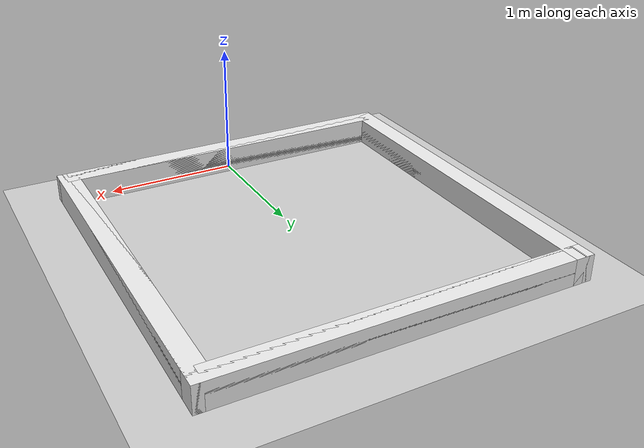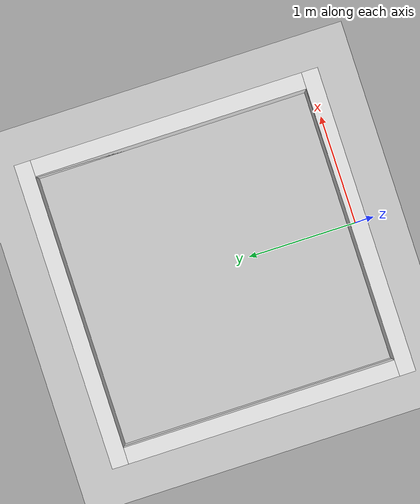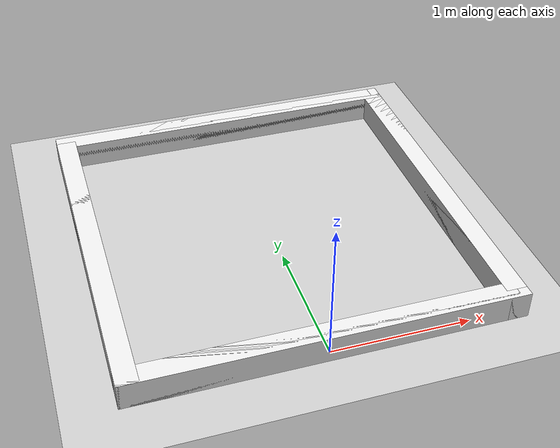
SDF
<sdf version="1.6">
 <world name="default">
  <model name="ground_plane">
   <static>1</static>
   <link name="link">
    <collision name="collision">
     <geometry><plane><normal>0 0 1</normal><size>100 100</size></plane></geometry>
     <surface><friction><ode><mu>100</mu><mu2>50</mu2></ode></friction></surface>
    </collision>
    <visual name="visual">
     <cast_shadows>0</cast_shadows>
     <geometry><plane><normal>0 0 1</normal><size>100 100</size></plane></geometry>
     <material>
      <script><uri>file://media/materials/scripts/gazebo.material</uri><name>Gazebo/Grey</name></script>
     </material>
    </visual>
   </link>
  </model>
  <model name="frame">
   <link name="link_3_clone">
    <pose>0 -1.325 0 0 -0 0</pose>
    <inertial>
     <mass>57</mass>
     <inertia><ixx>0.0</ixx><ixy>0</ixy><ixz>0</ixz><iyy>0.0</iyy><iyz>0</iyz><izz>0.0</izz></inertia>
    </inertial>
    <visual name="visual">
     <geometry><box><size>2.8 0.15 0.2</size></box></geometry>
     <material>
      <lighting>1</lighting>
      <script><uri>file://media/materials/scripts/gazebo.material</uri><name>Gazebo/White</name></script>
     </material>
    </visual>
    <visual name="ModelPreview_2::link_3_clone::visual_1">
     <geometry><box><size>2.65 0.15 0.2</size></box></geometry>
     <material>
      <lighting>1</lighting>
      <script><uri>file://media/materials/scripts/gazebo.material</uri><name>Gazebo/White</name></script>
     </material>
    </visual>
    <collision name="collision">
     <geometry><box><size>2.8 0.15 0.2</size></box></geometry>
     <surface>
      <friction>
       <ode><mu>1</mu><mu2>1</mu2><fdir1>0 0 0</fdir1><slip1>0</slip1><slip2>0</slip2></ode>
       <torsional>
        <coefficient>1</coefficient>
        <patch_radius>0</patch_radius>
        <surface_radius>0</surface_radius>
        <use_patch_radius>1</use_patch_radius>
        <ode><slip>0</slip></ode>
       </torsional>
      </friction>
      <bounce><restitution_coefficient>0</restitution_coefficient><threshold>1e+06</threshold></bounce>
      <contact>
       <collide_without_contact>0</collide_without_contact>
       <collide_without_contact_bitmask>1</collide_without_contact_bitmask>
       <collide_bitmask>1</collide_bitmask>
       <ode>
        <soft_cfm>0</soft_cfm>
        <soft_erp>0.2</soft_erp>
        <kp>1e+13</kp>
        <kd>1</kd>
        <max_vel>0.01</max_vel>
        <min_depth>0</min_depth>
       </ode>
       <bullet>
        <split_impulse>1</split_impulse>
        <split_impulse_penetration_threshold>-0.01</split_impulse_penetration_threshold>
        <soft_cfm>0</soft_cfm>
        <soft_erp>0.2</soft_erp>
        <kp>1e+13</kp>
        <kd>1</kd>
       </bullet>
      </contact>
     </surface>
    </collision>
   </link>
   <link name="link_3_clone_clone">
    <pose>0 1.325 0 0 -0 0</pose>
    <visual name="visual">
     <geometry><box><size>2.8 0.15 0.2</size></box></geometry>
     <material>
      <lighting>1</lighting>
      <script><uri>file://media/materials/scripts/gazebo.material</uri><name>Gazebo/White</name></script>
     </material>
    </visual>
    <visual name="visual_1">
     <geometry><box><size>2.65 0.15 0.2</size></box></geometry>
     <material>
      <lighting>1</lighting>
      <script><uri>file://media/materials/scripts/gazebo.material</uri><name>Gazebo/White</name></script>
     </material>
    </visual>
    <collision name="collision">
     <geometry><box><size>2.8 0.15 0.2</size></box></geometry>
     <surface>
      <friction>
       <ode><mu>1</mu><mu2>1</mu2><fdir1>0 0 0</fdir1><slip1>0</slip1><slip2>0</slip2></ode>
       <torsional>
        <coefficient>1</coefficient>
        <patch_radius>0</patch_radius>
        <surface_radius>0</surface_radius>
        <use_patch_radius>1</use_patch_radius>
        <ode><slip>0</slip></ode>
       </torsional>
      </friction>
      <bounce><restitution_coefficient>0</restitution_coefficient><threshold>1e+06</threshold></bounce>
      <contact>
       <collide_without_contact>0</collide_without_contact>
       <collide_without_contact_bitmask>1</collide_without_contact_bitmask>
       <collide_bitmask>1</collide_bitmask>
       <ode>
        <soft_cfm>0</soft_cfm>
        <soft_erp>0.2</soft_erp>
        <kp>1e+13</kp>
        <kd>1</kd>
        <max_vel>0.01</max_vel>
        <min_depth>0</min_depth>
       </ode>
       <bullet>
        <split_impulse>1</split_impulse>
        <split_impulse_penetration_threshold>-0.01</split_impulse_penetration_threshold>
        <soft_cfm>0</soft_cfm>
        <soft_erp>0.2</soft_erp>
        <kp>1e+13</kp>
        <kd>1</kd>
       </bullet>
      </contact>
     </surface>
    </collision>
   </link>
   <link name="link_3_clone_clone_0">
    <pose>1.325 0 0 0 -0 1.5708</pose>
    <visual name="visual_1">
     <geometry><box><size>2.65 0.15 0.2</size></box></geometry>
     <material>
      <lighting>1</lighting>
      <script><uri>file://media/materials/scripts/gazebo.material</uri><name>Gazebo/White</name></script>
     </material>
    </visual>
    <visual name="visual">
     <geometry><box><size>2.8 0.15 0.2</size></box></geometry>
     <material>
      <lighting>1</lighting>
      <script><uri>file://media/materials/scripts/gazebo.material</uri><name>Gazebo/White</name></script>
     </material>
    </visual>
    <collision name="collision">
     <geometry><box><size>2.8 0.15 0.2</size></box></geometry>
     <surface>
      <friction>
       <ode><mu>1</mu><mu2>1</mu2><fdir1>0 0 0</fdir1><slip1>0</slip1><slip2>0</slip2></ode>
       <torsional>
        <coefficient>1</coefficient>
        <patch_radius>0</patch_radius>
        <surface_radius>0</surface_radius>
        <use_patch_radius>1</use_patch_radius>
        <ode><slip>0</slip></ode>
       </torsional>
      </friction>
      <bounce><restitution_coefficient>0</restitution_coefficient><threshold>1e+06</threshold></bounce>
      <contact>
       <collide_without_contact>0</collide_without_contact>
       <collide_without_contact_bitmask>1</collide_without_contact_bitmask>
       <collide_bitmask>1</collide_bitmask>
       <ode>
        <soft_cfm>0</soft_cfm>
        <soft_erp>0.2</soft_erp>
        <kp>1e+13</kp>
        <kd>1</kd>
        <max_vel>0.01</max_vel>
        <min_depth>0</min_depth>
       </ode>
       <bullet>
        <split_impulse>1</split_impulse>
        <split_impulse_penetration_threshold>-0.01</split_impulse_penetration_threshold>
        <soft_cfm>0</soft_cfm>
        <soft_erp>0.2</soft_erp>
        <kp>1e+13</kp>
        <kd>1</kd>
       </bullet>
      </contact>
     </surface>
    </collision>
   </link>
   <link name="link_3_clone_clone_0_clone">
    <pose>-1.325 0 0 0 -0 1.5708</pose>
    <visual name="visual_1">
     <geometry><box><size>2.65 0.15 0.2</size></box></geometry>
     <material>
      <lighting>1</lighting>
      <script><uri>file://media/materials/scripts/gazebo.material</uri><name>Gazebo/White</name></script>
     </material>
    </visual>
    <visual name="visual">
     <geometry><box><size>2.8 0.15 0.2</size></box></geometry>
     <material>
      <lighting>1</lighting>
      <script><uri>file://media/materials/scripts/gazebo.material</uri><name>Gazebo/White</name></script>
     </material>
    </visual>
    <collision name="collision">
     <geometry><box><size>2.8 0.15 0.2</size></box></geometry>
     <surface>
      <friction>
       <ode><mu>1</mu><mu2>1</mu2><fdir1>0 0 0</fdir1><slip1>0</slip1><slip2>0</slip2></ode>
       <torsional>
        <coefficient>1</coefficient>
        <patch_radius>0</patch_radius>
        <surface_radius>0</surface_radius>
        <use_patch_radius>1</use_patch_radius>
        <ode><slip>0</slip></ode>
       </torsional>
      </friction>
      <bounce><restitution_coefficient>0</restitution_coefficient><threshold>1e+06</threshold></bounce>
      <contact>
       <collide_without_contact>0</collide_without_contact>
       <collide_without_contact_bitmask>1</collide_without_contact_bitmask>
       <collide_bitmask>1</collide_bitmask>
       <ode>
        <soft_cfm>0</soft_cfm>
        <soft_erp>0.2</soft_erp>
        <kp>1e+13</kp>
        <kd>1</kd>
        <max_vel>0.01</max_vel>
        <min_depth>0</min_depth>
       </ode>
       <bullet>
        <split_impulse>1</split_impulse>
        <split_impulse_penetration_threshold>-0.01</split_impulse_penetration_threshold>
        <soft_cfm>0</soft_cfm>
        <soft_erp>0.2</soft_erp>
        <kp>1e+13</kp>
        <kd>1</kd>
       </bullet>
      </contact>
     </surface>
    </collision>
   </link>
   <static>1</static>
   <pose>0 1.325 0.1 0 -0 0</pose>
  </model>
 </world>
</sdf>
